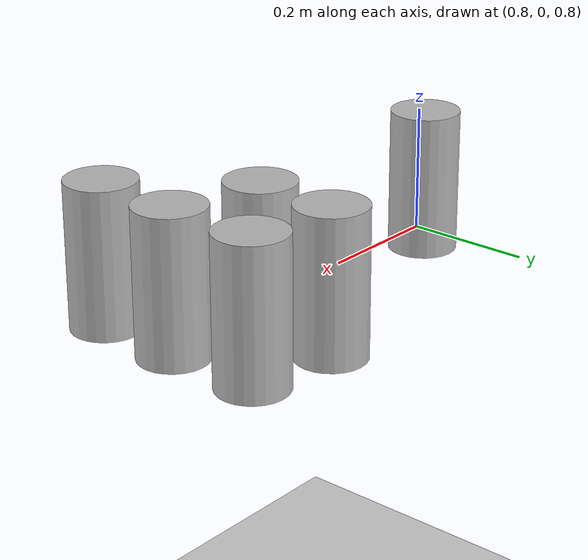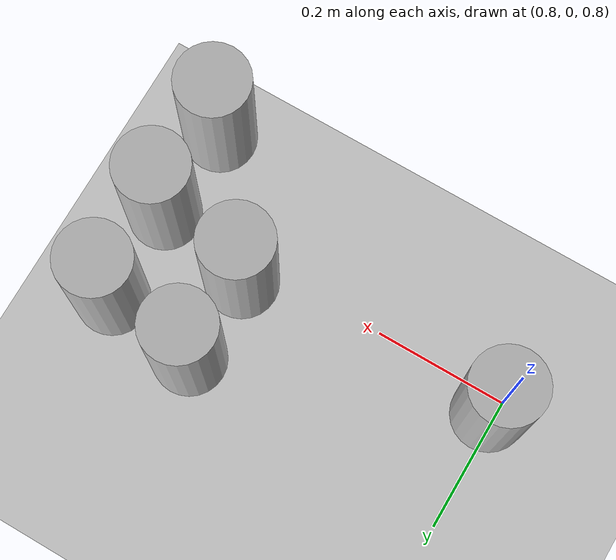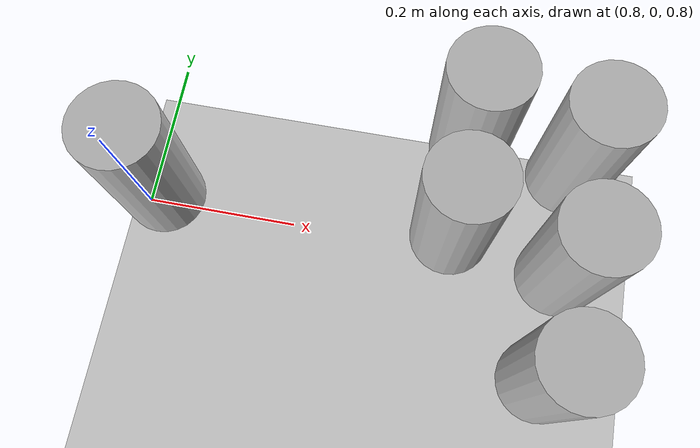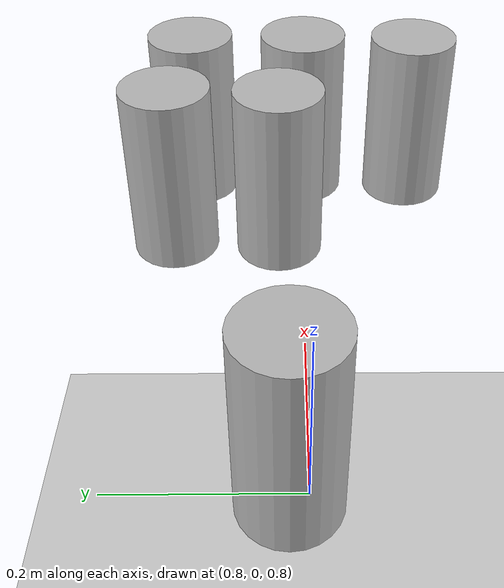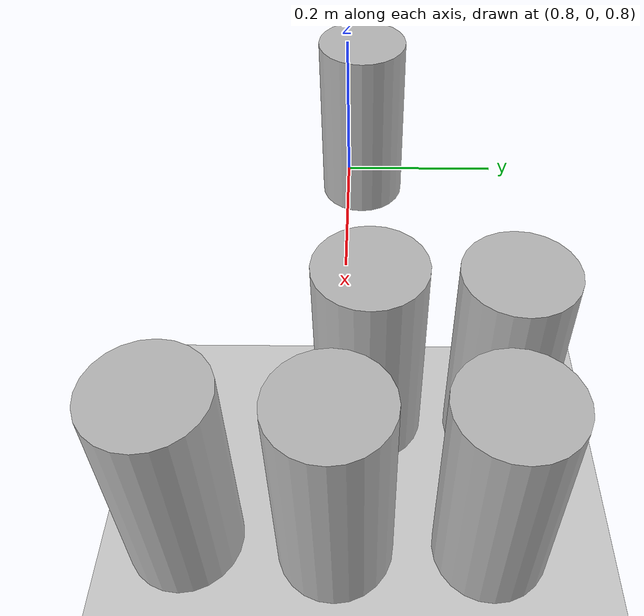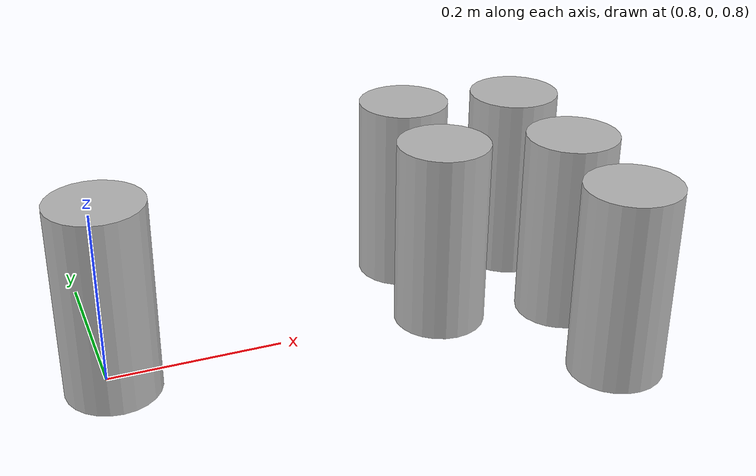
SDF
<sdf version="1.6">
 <world name="default">
  <model name="ground_plane">
   <static>1</static>
   <link name="link">
    <collision name="collision">
     <geometry><plane><normal>0 0 1</normal><size>100 100</size></plane></geometry>
     <surface><friction><ode><mu>100</mu><mu2>50</mu2></ode></friction></surface>
    </collision>
    <visual name="visual">
     <cast_shadows>0</cast_shadows>
     <geometry><plane><normal>0 0 1</normal><size>100 100</size></plane></geometry>
     <material>
      <script><uri>file://media/materials/scripts/gazebo.material</uri><name>Gazebo/Grey</name></script>
     </material>
    </visual>
   </link>
  </model>
  <light name="sun" type="directional">
   <pose>0 0 10 0 -0 0</pose>
   <diffuse>0.8 0.8 0.8 1</diffuse>
   <specular>0.1 0.1 0.1 1</specular>
   <attenuation>
    <range>1000</range>
    <constant>0.9</constant>
    <linear>0.01</linear>
    <quadratic>0.001</quadratic>
   </attenuation>
   <direction>-0.5 0.5 -1</direction>
  </light>
  <gravity>0 0 -9.8</gravity>
  <magnetic_field>6e-06 2.3e-05 -4.2e-05</magnetic_field>
  <atmosphere type="adiabatic"/>
  <physics name="default_physics" default="0" type="ode">
   <max_step_size>0.005</max_step_size>
   <real_time_factor>1</real_time_factor>
   <real_time_update_rate>200</real_time_update_rate>
   <ode>
    <solver>
     <type>quick</type>
     <iters>50</iters>
     <sor>1.0</sor>
     <use_dynamic_moi_rescaling>false</use_dynamic_moi_rescaling>
    </solver>
   </ode>
  </physics>
  <scene><ambient>0.4 0.4 0.4 1</ambient><background>0.7 0.7 0.7 1</background><shadows>1</shadows></scene>
  <spherical_coordinates>
   <surface_model>EARTH_WGS84</surface_model>
   <latitude_deg>0</latitude_deg>
   <longitude_deg>0</longitude_deg>
   <elevation>0</elevation>
   <heading_deg>0</heading_deg>
  </spherical_coordinates>
  <model name="beer">
   <link name="link">
    <pose>0 0 0.115 0 -0 0</pose>
    <inertial>
     <mass>0.39</mass>
     <inertia><ixx>0.00058</ixx><ixy>0</ixy><ixz>0</ixz><iyy>0.00058</iyy><iyz>0</iyz><izz>0.00019</izz></inertia>
    </inertial>
    <collision name="collision">
     <geometry><cylinder><radius>0.055</radius><length>0.23</length></cylinder></geometry>
    </collision>
    <visual name="visual">
     <geometry><cylinder><radius>0.055</radius><length>0.23</length></cylinder></geometry>
     <material>
      <script>
       <uri>model://beer/materials/scripts</uri>
       <uri>model://beer/materials/textures</uri>
       <name>Beer/Diffuse</name>
      </script>
     </material>
    </visual>
   </link>
   <pose>0.809991 0.018919 0.774992 -1e-06 2.7e-05 0.000596</pose>
  </model>
  <model name="beer_0">
   <link name="link">
    <pose>0 0 0.115 0 -0 0</pose>
    <inertial>
     <mass>0.39</mass>
     <inertia><ixx>0.00058</ixx><ixy>0</ixy><ixz>0</ixz><iyy>0.00058</iyy><iyz>0</iyz><izz>0.00019</izz></inertia>
    </inertial>
    <collision name="collision">
     <geometry><cylinder><radius>0.055</radius><length>0.23</length></cylinder></geometry>
    </collision>
    <visual name="visual">
     <geometry><cylinder><radius>0.055</radius><length>0.23</length></cylinder></geometry>
     <material>
      <script>
       <uri>model://beer/materials/scripts</uri>
       <uri>model://beer/materials/textures</uri>
       <name>Beer/Diffuse</name>
      </script>
     </material>
    </visual>
   </link>
   <pose>1.21777 0.164427 0.774992 2.7e-05 3e-06 0.001742</pose>
  </model>
  <model name="beer_1">
   <link name="link">
    <pose>0 0 0.115 0 -0 0</pose>
    <inertial>
     <mass>0.39</mass>
     <inertia><ixx>0.00058</ixx><ixy>0</ixy><ixz>0</ixz><iyy>0.00058</iyy><iyz>0</iyz><izz>0.00019</izz></inertia>
    </inertial>
    <collision name="collision">
     <geometry><cylinder><radius>0.055</radius><length>0.23</length></cylinder></geometry>
    </collision>
    <visual name="visual">
     <geometry><cylinder><radius>0.055</radius><length>0.23</length></cylinder></geometry>
     <material>
      <script>
       <uri>model://beer/materials/scripts</uri>
       <uri>model://beer/materials/textures</uri>
       <name>Beer/Diffuse</name>
      </script>
     </material>
    </visual>
   </link>
   <pose>1.35986 0.144602 0.77499 -1e-06 -4e-06 0.00265</pose>
  </model>
  <model name="beer_2">
   <link name="link">
    <pose>0 0 0.115 0 -0 0</pose>
    <inertial>
     <mass>0.39</mass>
     <inertia><ixx>0.00058</ixx><ixy>0</ixy><ixz>0</ixz><iyy>0.00058</iyy><iyz>0</iyz><izz>0.00019</izz></inertia>
    </inertial>
    <collision name="collision">
     <geometry><cylinder><radius>0.055</radius><length>0.23</length></cylinder></geometry>
    </collision>
    <visual name="visual">
     <geometry><cylinder><radius>0.055</radius><length>0.23</length></cylinder></geometry>
     <material>
      <script>
       <uri>model://beer/materials/scripts</uri>
       <uri>model://beer/materials/textures</uri>
       <name>Beer/Diffuse</name>
      </script>
     </material>
    </visual>
   </link>
   <pose>1.21143 0.029294 0.775001 -1e-05 2.7e-05 0.002129</pose>
  </model>
  <model name="beer_3">
   <link name="link">
    <pose>0 0 0.115 0 -0 0</pose>
    <inertial>
     <mass>0.39</mass>
     <inertia><ixx>0.00058</ixx><ixy>0</ixy><ixz>0</ixz><iyy>0.00058</iyy><iyz>0</iyz><izz>0.00019</izz></inertia>
    </inertial>
    <collision name="collision">
     <geometry><cylinder><radius>0.055</radius><length>0.23</length></cylinder></geometry>
    </collision>
    <visual name="visual">
     <geometry><cylinder><radius>0.055</radius><length>0.23</length></cylinder></geometry>
     <material>
      <script>
       <uri>model://beer/materials/scripts</uri>
       <uri>model://beer/materials/textures</uri>
       <name>Beer/Diffuse</name>
      </script>
     </material>
    </visual>
   </link>
   <pose>1.35277 -0.145773 0.775001 2.2e-05 2e-06 0.001485</pose>
  </model>
  <model name="beer_4">
   <link name="link">
    <pose>0 0 0.115 0 -0 0</pose>
    <inertial>
     <mass>0.39</mass>
     <inertia><ixx>0.00058</ixx><ixy>0</ixy><ixz>0</ixz><iyy>0.00058</iyy><iyz>0</iyz><izz>0.00019</izz></inertia>
    </inertial>
    <collision name="collision">
     <geometry><cylinder><radius>0.055</radius><length>0.23</length></cylinder></geometry>
    </collision>
    <visual name="visual">
     <geometry><cylinder><radius>0.055</radius><length>0.23</length></cylinder></geometry>
     <material>
      <script>
       <uri>model://beer/materials/scripts</uri>
       <uri>model://beer/materials/textures</uri>
       <name>Beer/Diffuse</name>
      </script>
     </material>
    </visual>
   </link>
   <pose>1.36129 -0.002314 0.774991 1.7e-05 1.3e-05 0.002502</pose>
  </model>
 </world>
</sdf>
